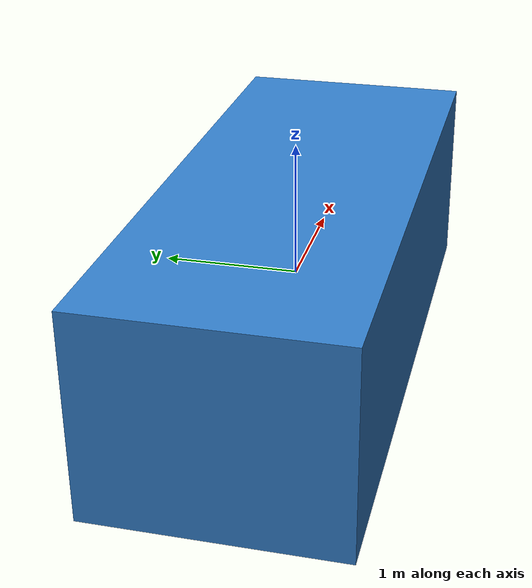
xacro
<?xml version="1.0"?>
<robot xmlns:xacro="http://www.ros.org/wiki/xacro" name="ackermann_vehicle">

  <link name="world"/>

  <link name="base_link">
    <visual>
      <geometry>
        <box size="4.5 1.8 1.5"/>
      </geometry>
      <material name="blue">
        <color rgba="0.2 0.5 0.8 1.0"/>
      </material>
    </visual>
    <collision>
      <geometry>
        <box size="4.5 1.8 1.5"/>
      </geometry>
    </collision>
  </link>

  <!-- Fixed attachment; SE(2) motion is modeled via SRDF virtual planar joint -->
  <joint name="world_to_base" type="fixed">
    <parent link="world"/>
    <child link="base_link"/>
    <origin xyz="0 0 0" rpy="0 0 0"/>
  </joint>

</robot>
